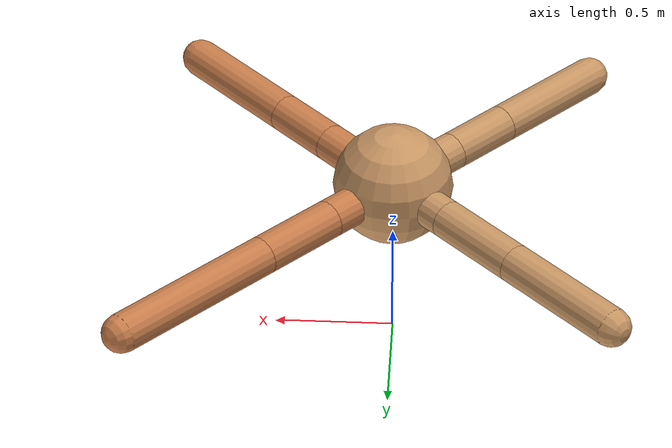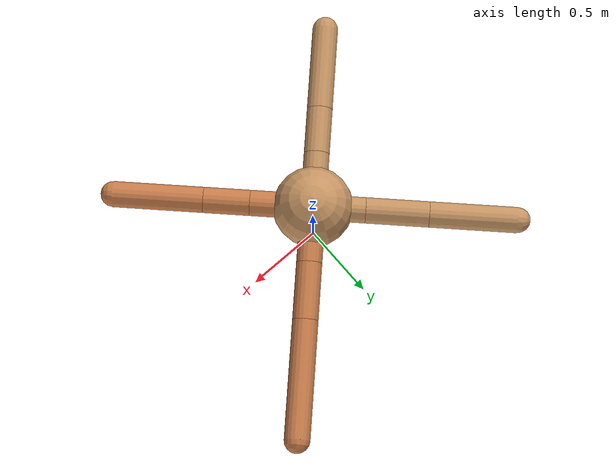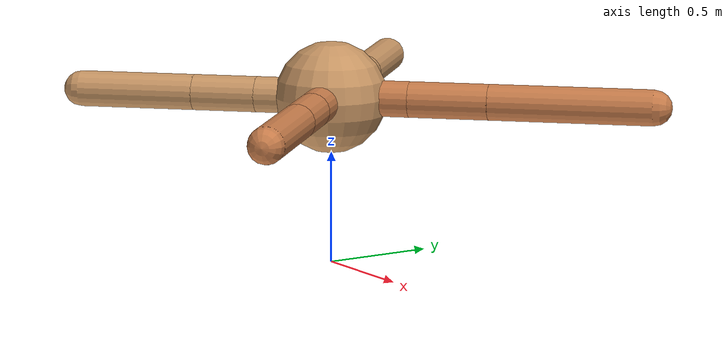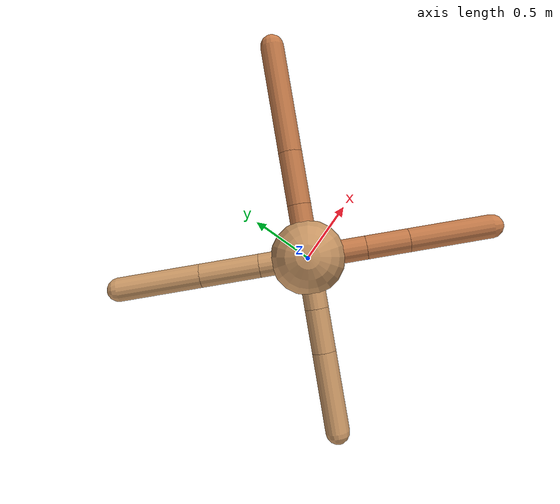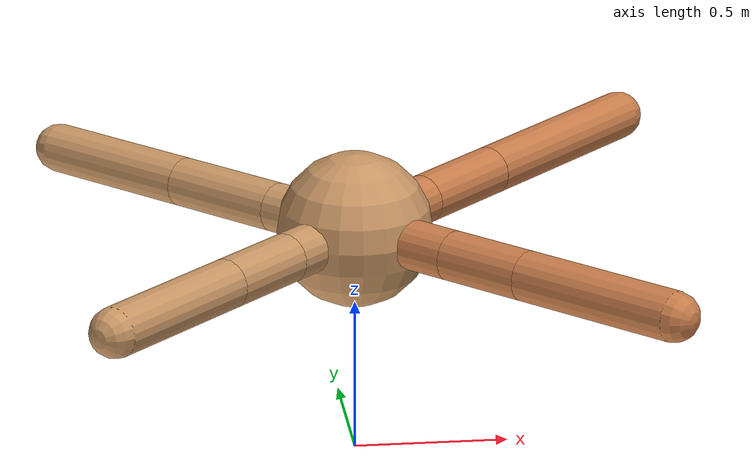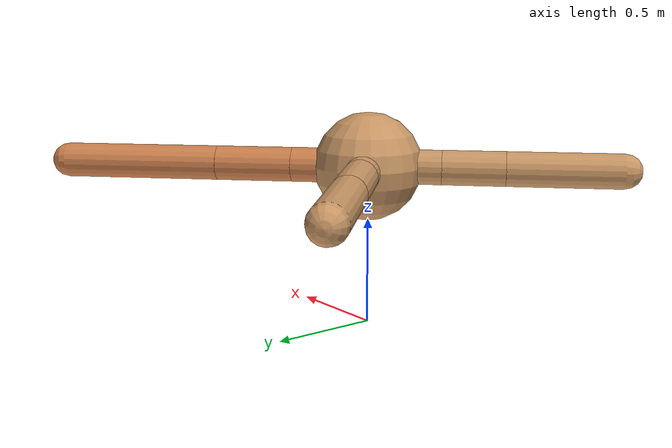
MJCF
<mujoco model="ant">
  <compiler angle="degree" coordinate="local" inertiafromgeom="true" />
  <option integrator="RK4" timestep="0.01" />
  <custom>
    <numeric data="0.0 0.0 0.55 1.0 0.0 0.0 0.0 0.0 1.0 0.0 -1.0 0.0 -1.0 0.0 1.0" name="init_qpos" />
  </custom>
  <default>
    <joint armature="1" damping="1" limited="true" />
    <geom conaffinity="0" condim="3" density="5.0" friction="1.5 0.1 0.1" margin="0.01" rgba="0.8 0.6 0.4 1" />
  </default>
  <worldbody>
    <body name="torso" pos="0 0 0.75">
      <geom name="torso_geom" pos="0 0 0" size="0.25" type="sphere" />

      <body name="front_left_leg" pos="0 0 0">
        <geom fromto="0.0 0.0 0.0 0.2507377675048259 0.2507377675048259 0.0" name="aux_1_geom" size="0.08" type="capsule" rgba=".8 .5 .3 1" />
        <body name="aux_1" pos="0.2507377675048259 0.2507377675048259 0.0">
          <joint axis="0 0 1" name="hip_1" pos="0.0 0.0 0.0" range="-40 40" type="hinge" />
          <geom fromto="0.0 0.0 0.0 0.25190858248963205 0.25190858248963205 0.0" name="left_leg_geom" size="0.08" type="capsule" rgba=".8 .5 .3 1" />
          <body pos="0.25190858248963205 0.25190858248963205 0.0" name="front_left_foot">
            <joint axis="-1 1 0" name="ankle_1" pos="0.0 0.0 0.0" range="30 100" type="hinge" />
            <geom fromto="0.0 0.0 0.0 0.5165406102695641 0.5165406102695641 0.0" name="left_ankle_geom" size="0.08" type="capsule" rgba=".8 .5 .3 1" />
          </body>
        </body>
      </body>
      <body name="front_right_leg" pos="0 0 0">
        <geom fromto="0.0 0.0 0.0 -0.22935618665475543 0.22935618665475543 0.0" name="aux_2_geom" size="0.08" type="capsule" />
        <body name="aux_2" pos="-0.22935618665475543 0.22935618665475543 0.0">
          <joint axis="0 0 1" name="hip_2" pos="0.0 0.0 0.0" range="-40 40" type="hinge" />
          <geom fromto="0.0 0.0 0.0 -0.2775114108940664 0.2775114108940664 0.0" name="right_leg_geom" size="0.08" type="capsule" />
          <body pos="-0.2775114108940664 0.2775114108940664 0.0" name="front_right_foot">
            <joint axis="1 1 0" name="ankle_2" pos="0.0 0.0 0.0" range="-100 -30" type="hinge" />
            <geom fromto="0.0 0.0 0.0 -0.3852195951231866 0.3852195951231866 0.0" name="right_ankle_geom" size="0.08" type="capsule" />
          </body>
        </body>
      </body>
      <body name="left_back_leg" pos="0 0 0">
        <geom fromto="0.0 0.0 0.0 -0.23998518860637172 -0.23998518860637172 0.0" name="aux_3_geom" size="0.08" type="capsule" />
        <body name="aux_3" pos="-0.23998518860637172 -0.23998518860637172 0.0">
          <joint axis="0 0 1" name="hip_3" pos="0.0 0.0 0.0" range="-40 40" type="hinge" />
          <geom fromto="0.0 0.0 0.0 -0.20392682214875402 -0.20392682214875402 0.0" name="back_leg_geom" size="0.08" type="capsule" />
          <body pos="-0.20392682214875402 -0.20392682214875402 0.0" name="left_back_foot">
            <joint axis="-1 1 0" name="ankle_3" pos="0.0 0.0 0.0" range="-100 -30" type="hinge" />
            <geom fromto="0.0 0.0 0.0 -0.3705497179294557 -0.3705497179294557 0.0" name="third_ankle_geom" size="0.08" type="capsule" />
          </body>
        </body>
      </body>
      <body name="right_back_leg" pos="0 0 0">
        <geom fromto="0.0 0.0 0.0 0.2754088136322687 -0.2754088136322687 0.0" name="aux_4_geom" size="0.08" type="capsule" rgba=".8 .5 .3 1" />
        <body name="aux_4" pos="0.2754088136322687 -0.2754088136322687 0.0">
          <joint axis="0 0 1" name="hip_4" pos="0.0 0.0 0.0" range="-40 40" type="hinge" />
          <geom fromto="0.0 0.0 0.0 0.20363333018703697 -0.20363333018703697 0.0" name="rightback_leg_geom" size="0.08" type="capsule" rgba=".8 .5 .3 1" />
          <body pos="0.20363333018703697 -0.20363333018703697 0.0" name="right_back_foot">
            <joint axis="1 1 0" name="ankle_4" pos="0.0 0.0 0.0" range="30 100" type="hinge" />
            <geom fromto="0.0 0.0 0.0 0.3942316177594119 -0.3942316177594119 0.0" name="fourth_ankle_geom" size="0.08" type="capsule" rgba=".8 .5 .3 1" />
          </body>
        </body>
      </body>
    </body>
  </worldbody>
  <actuator>
    <motor ctrllimited="true" ctrlrange="-1.0 1.0" joint="hip_4" gear="150" />
    <motor ctrllimited="true" ctrlrange="-1.0 1.0" joint="ankle_4" gear="150" />
    <motor ctrllimited="true" ctrlrange="-1.0 1.0" joint="hip_1" gear="150" />
    <motor ctrllimited="true" ctrlrange="-1.0 1.0" joint="ankle_1" gear="150" />
    <motor ctrllimited="true" ctrlrange="-1.0 1.0" joint="hip_2" gear="150" />
    <motor ctrllimited="true" ctrlrange="-1.0 1.0" joint="ankle_2" gear="150" />
    <motor ctrllimited="true" ctrlrange="-1.0 1.0" joint="hip_3" gear="150" />
    <motor ctrllimited="true" ctrlrange="-1.0 1.0" joint="ankle_3" gear="150" />
  </actuator>
</mujoco>
